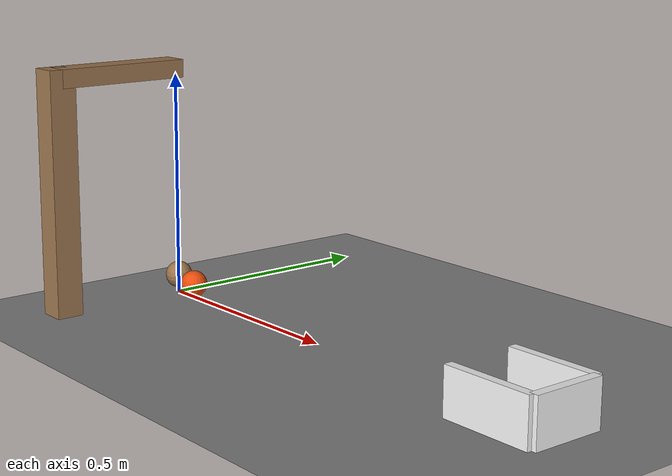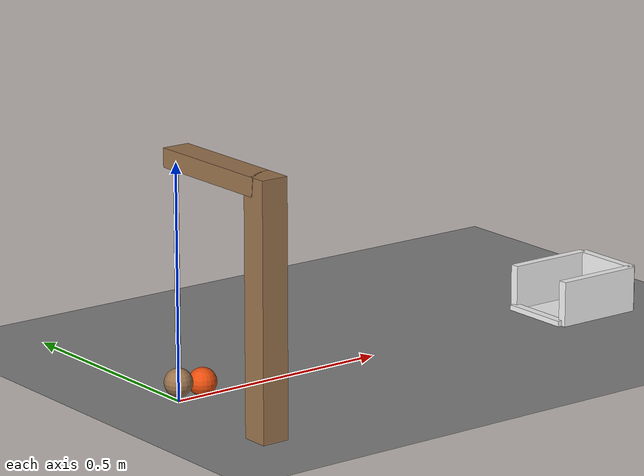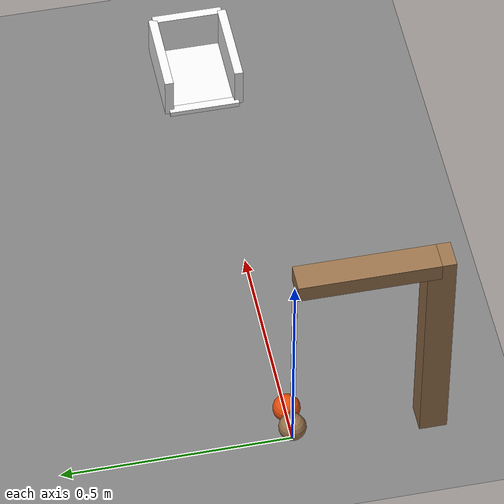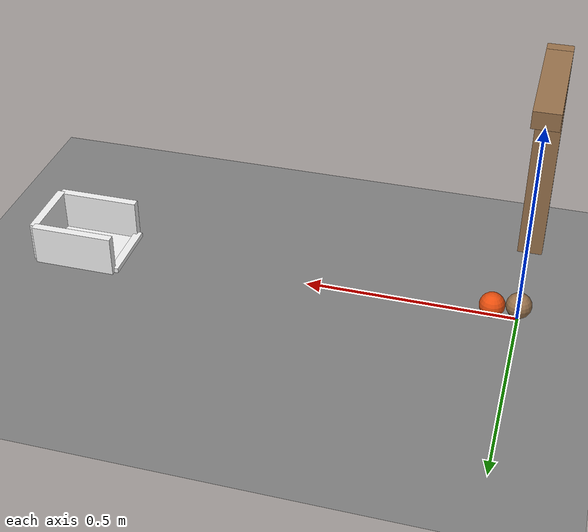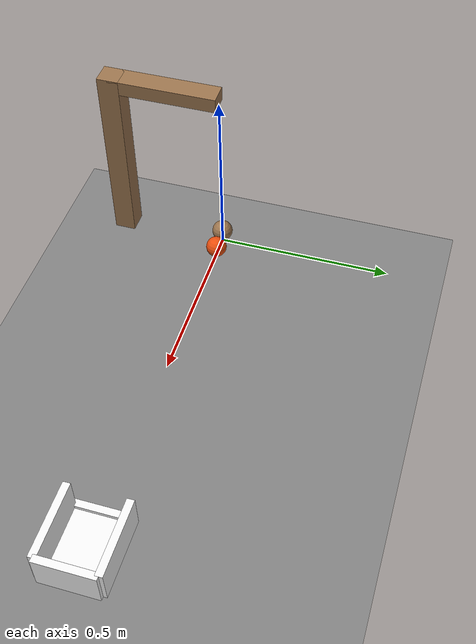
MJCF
<mujoco model="pendulum_strikes_ball_into_cup">
  <compiler angle="radian"/>
  <option timestep="0.002"/>
  <worldbody>
    <geom name="floor" type="plane" size="6 6 0.1" friction="0.8 0.001 0.0001"/>
    <geom name="pendulum_stand_arm" type="box" pos="0 -0.15 0.515" size="0.03 0.15 0.02" rgba="0.6 0.45 0.3 1"/>
    <geom name="pendulum_stand_post" type="box" pos="0 -0.3 0.2675" size="0.03 0.03 0.2675" rgba="0.6 0.45 0.3 1"/>
    <body name="pendulum" pos="0 0 0.49">
      <joint name="pivot" type="hinge" pos="0 0 0" axis="0 1 0"/>
      <geom name="pendulum_bob" type="sphere" pos="0 0 -0.45" size="0.03" mass="0.4" rgba="0.6 0.45 0.3 1"/>
      <geom name="pendulum_rod" type="capsule" size="0.005" fromto="0 0 0 0 0 -0.42" mass="0.04" rgba="0.6 0.45 0.3 1"/>
    </body>
    <body name="ball" pos="0.06 0 0.03">
      <freejoint/>
      <geom name="ball" type="sphere" pos="0 0 0" size="0.03" mass="0.06" condim="6" friction="0.8 0.001 0.0001" rgba="0.9 0.3 0.05 1"/>
    </body>
    <body name="cup">
      <geom name="cup_base" type="box" pos="1.06 0 0.001" size="0.1 0.08 0.001" friction="0.8 0.001 0.0001" solref="0.01 1" rgba="0.95 0.95 0.95 1"/>
      <geom name="cup_near_wall" type="box" pos="0.96 0 0.006" size="0.01 0.08 0.006" friction="0.8 0.001 0.0001" solref="0.01 1" rgba="0.95 0.95 0.95 1"/>
      <geom name="cup_far_wall" type="box" pos="1.16 0 0.05" size="0.01 0.08 0.05" friction="0.8 0.001 0.0001" solref="0.01 1" rgba="0.95 0.95 0.95 1"/>
      <geom name="cup_left_wall" type="box" pos="1.06 0.08 0.05" size="0.1 0.01 0.05" friction="0.8 0.001 0.0001" solref="0.01 1" rgba="0.95 0.95 0.95 1"/>
      <geom name="cup_right_wall" type="box" pos="1.06 -0.08 0.05" size="0.1 0.01 0.05" friction="0.8 0.001 0.0001" solref="0.01 1" rgba="0.95 0.95 0.95 1"/>
    </body>
  </worldbody>
  <keyframe>
    <key name="start" qpos="0.523599 0.06 0 0.03 1 0 0 0" qvel="0 0 0 0 0 0 0"/>
  </keyframe>
</mujoco>
